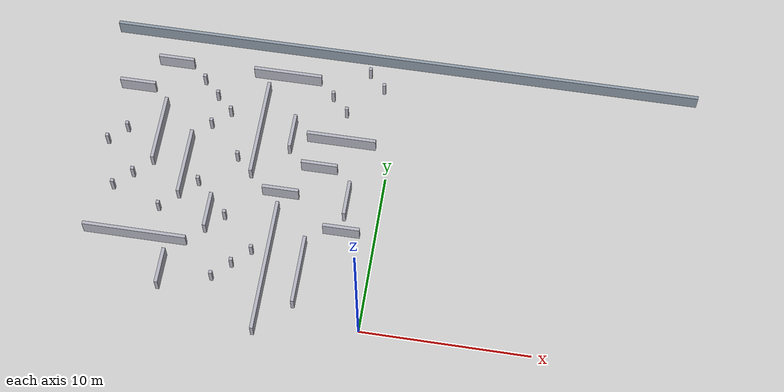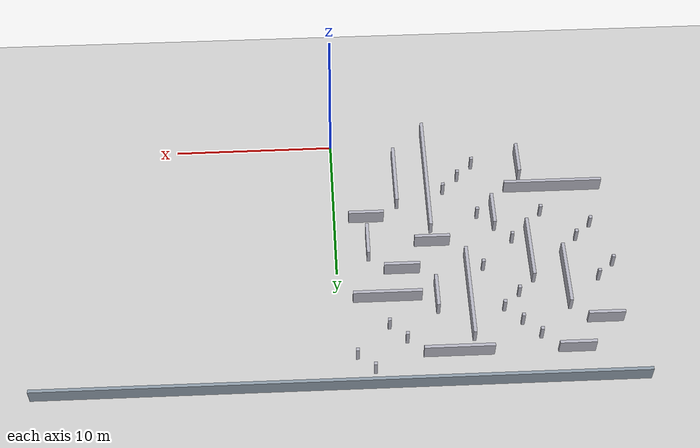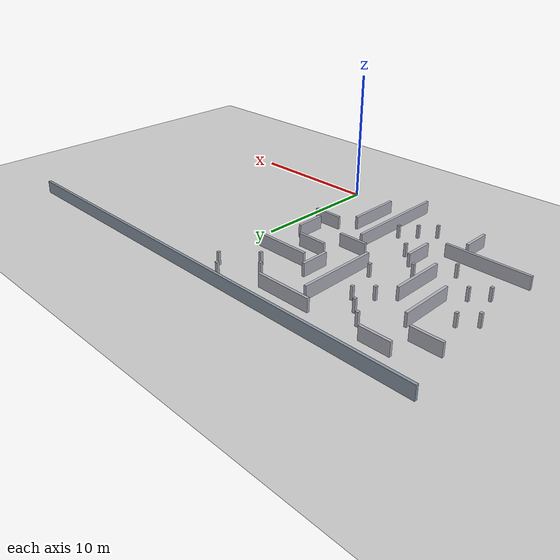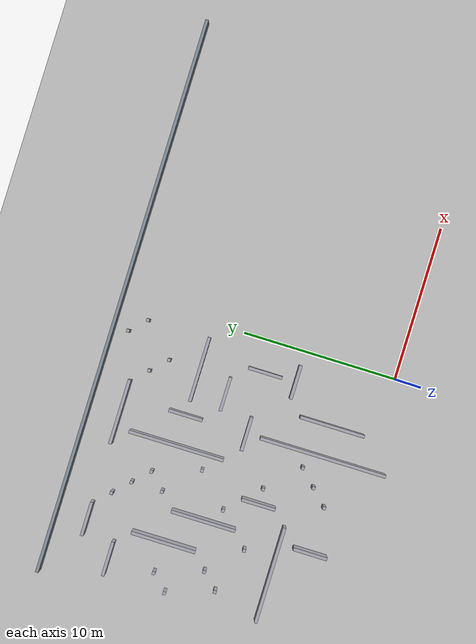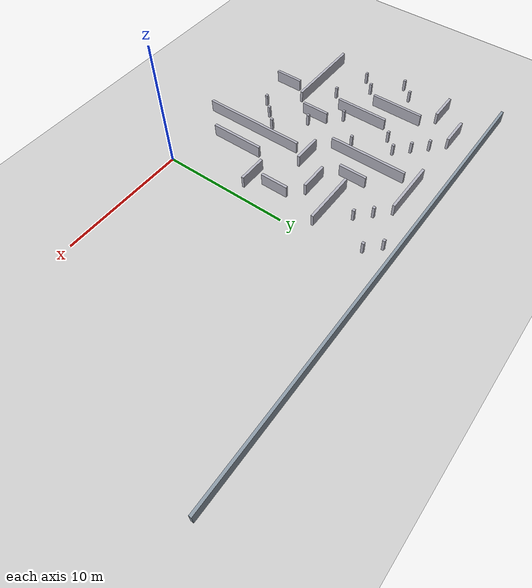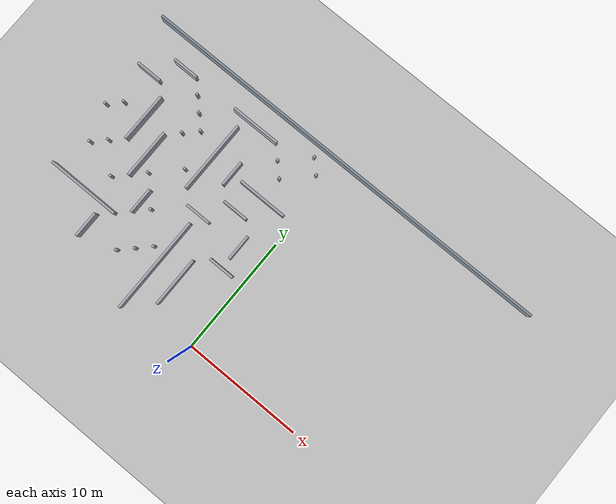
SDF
<sdf version="1.6">
 <world name="maze">
  <include><uri>model://sun</uri></include>
  <include><uri>model://ground_plane</uri></include>
  <model name="shell_n">
   <pose>0.000 18.000 0.500 0 0 0</pose>
   <static>true</static>
   <link name="link">
    <collision name="collision"><geometry><box><size>36.200 0.200 1.000</size></box></geometry></collision>
    <visual name="visual">
     <geometry><box><size>36.200 0.200 1.000</size></box></geometry>
     <material><ambient>0.55 0.6 0.65 1</ambient><diffuse>0.55 0.6 0.65 1</diffuse></material>
    </visual>
   </link>
  </model>
  <model name="mv001">
   <pose>-16.000 7.000 0.500 0 0 0</pose>
   <static>true</static>
   <link name="link">
    <collision name="collision"><geometry><box><size>0.200 0.200 1.000</size></box></geometry></collision>
    <visual name="visual">
     <geometry><box><size>0.200 0.200 1.000</size></box></geometry>
     <material><ambient>0.7 0.7 0.75 1</ambient><diffuse>0.7 0.7 0.75 1</diffuse></material>
    </visual>
   </link>
  </model>
  <model name="mv002">
   <pose>-16.000 11.000 0.500 0 0 0</pose>
   <static>true</static>
   <link name="link">
    <collision name="collision"><geometry><box><size>0.200 0.200 1.000</size></box></geometry></collision>
    <visual name="visual">
     <geometry><box><size>0.200 0.200 1.000</size></box></geometry>
     <material><ambient>0.7 0.7 0.75 1</ambient><diffuse>0.7 0.7 0.75 1</diffuse></material>
    </visual>
   </link>
  </model>
  <model name="mv005">
   <pose>-14.000 11.000 0.500 0 0 0</pose>
   <static>true</static>
   <link name="link">
    <collision name="collision"><geometry><box><size>0.200 4.200 1.000</size></box></geometry></collision>
    <visual name="visual">
     <geometry><box><size>0.200 4.200 1.000</size></box></geometry>
     <material><ambient>0.7 0.7 0.75 1</ambient><diffuse>0.7 0.7 0.75 1</diffuse></material>
    </visual>
   </link>
  </model>
  <model name="mv008">
   <pose>-12.000 2.000 0.500 0 0 0</pose>
   <static>true</static>
   <link name="link">
    <collision name="collision"><geometry><box><size>0.200 2.200 1.000</size></box></geometry></collision>
    <visual name="visual">
     <geometry><box><size>0.200 2.200 1.000</size></box></geometry>
     <material><ambient>0.7 0.7 0.75 1</ambient><diffuse>0.7 0.7 0.75 1</diffuse></material>
    </visual>
   </link>
  </model>
  <model name="mv009">
   <pose>-12.000 9.000 0.500 0 0 0</pose>
   <static>true</static>
   <link name="link">
    <collision name="collision"><geometry><box><size>0.200 4.200 1.000</size></box></geometry></collision>
    <visual name="visual">
     <geometry><box><size>0.200 4.200 1.000</size></box></geometry>
     <material><ambient>0.7 0.7 0.75 1</ambient><diffuse>0.7 0.7 0.75 1</diffuse></material>
    </visual>
   </link>
  </model>
  <model name="mv010">
   <pose>-12.000 15.000 0.500 0 0 0</pose>
   <static>true</static>
   <link name="link">
    <collision name="collision"><geometry><box><size>0.200 0.200 1.000</size></box></geometry></collision>
    <visual name="visual">
     <geometry><box><size>0.200 0.200 1.000</size></box></geometry>
     <material><ambient>0.7 0.7 0.75 1</ambient><diffuse>0.7 0.7 0.75 1</diffuse></material>
    </visual>
   </link>
  </model>
  <model name="mv014">
   <pose>-10.000 6.000 0.500 0 0 0</pose>
   <static>true</static>
   <link name="link">
    <collision name="collision"><geometry><box><size>0.200 2.200 1.000</size></box></geometry></collision>
    <visual name="visual">
     <geometry><box><size>0.200 2.200 1.000</size></box></geometry>
     <material><ambient>0.7 0.7 0.75 1</ambient><diffuse>0.7 0.7 0.75 1</diffuse></material>
    </visual>
   </link>
  </model>
  <model name="mv015">
   <pose>-10.000 13.000 0.500 0 0 0</pose>
   <static>true</static>
   <link name="link">
    <collision name="collision"><geometry><box><size>0.200 0.200 1.000</size></box></geometry></collision>
    <visual name="visual">
     <geometry><box><size>0.200 0.200 1.000</size></box></geometry>
     <material><ambient>0.7 0.7 0.75 1</ambient><diffuse>0.7 0.7 0.75 1</diffuse></material>
    </visual>
   </link>
  </model>
  <model name="mv018">
   <pose>-8.000 3.000 0.500 0 0 0</pose>
   <static>true</static>
   <link name="link">
    <collision name="collision"><geometry><box><size>0.200 0.200 1.000</size></box></geometry></collision>
    <visual name="visual">
     <geometry><box><size>0.200 0.200 1.000</size></box></geometry>
     <material><ambient>0.7 0.7 0.75 1</ambient><diffuse>0.7 0.7 0.75 1</diffuse></material>
    </visual>
   </link>
  </model>
  <model name="mv019">
   <pose>-8.000 12.000 0.500 0 0 0</pose>
   <static>true</static>
   <link name="link">
    <collision name="collision"><geometry><box><size>0.200 6.200 1.000</size></box></geometry></collision>
    <visual name="visual">
     <geometry><box><size>0.200 6.200 1.000</size></box></geometry>
     <material><ambient>0.7 0.7 0.75 1</ambient><diffuse>0.7 0.7 0.75 1</diffuse></material>
    </visual>
   </link>
  </model>
  <model name="mv021">
   <pose>-6.000 3.000 0.500 0 0 0</pose>
   <static>true</static>
   <link name="link">
    <collision name="collision"><geometry><box><size>0.200 8.200 1.000</size></box></geometry></collision>
    <visual name="visual">
     <geometry><box><size>0.200 8.200 1.000</size></box></geometry>
     <material><ambient>0.7 0.7 0.75 1</ambient><diffuse>0.7 0.7 0.75 1</diffuse></material>
    </visual>
   </link>
  </model>
  <model name="mv022">
   <pose>-6.000 12.000 0.500 0 0 0</pose>
   <static>true</static>
   <link name="link">
    <collision name="collision"><geometry><box><size>0.200 2.200 1.000</size></box></geometry></collision>
    <visual name="visual">
     <geometry><box><size>0.200 2.200 1.000</size></box></geometry>
     <material><ambient>0.7 0.7 0.75 1</ambient><diffuse>0.7 0.7 0.75 1</diffuse></material>
    </visual>
   </link>
  </model>
  <model name="mv025">
   <pose>-4.000 3.000 0.500 0 0 0</pose>
   <static>true</static>
   <link name="link">
    <collision name="collision"><geometry><box><size>0.200 4.200 1.000</size></box></geometry></collision>
    <visual name="visual">
     <geometry><box><size>0.200 4.200 1.000</size></box></geometry>
     <material><ambient>0.7 0.7 0.75 1</ambient><diffuse>0.7 0.7 0.75 1</diffuse></material>
    </visual>
   </link>
  </model>
  <model name="mv026">
   <pose>-4.000 15.000 0.500 0 0 0</pose>
   <static>true</static>
   <link name="link">
    <collision name="collision"><geometry><box><size>0.200 0.200 1.000</size></box></geometry></collision>
    <visual name="visual">
     <geometry><box><size>0.200 0.200 1.000</size></box></geometry>
     <material><ambient>0.7 0.7 0.75 1</ambient><diffuse>0.7 0.7 0.75 1</diffuse></material>
    </visual>
   </link>
  </model>
  <model name="mv029">
   <pose>-2.000 8.000 0.500 0 0 0</pose>
   <static>true</static>
   <link name="link">
    <collision name="collision"><geometry><box><size>0.200 2.200 1.000</size></box></geometry></collision>
    <visual name="visual">
     <geometry><box><size>0.200 2.200 1.000</size></box></geometry>
     <material><ambient>0.7 0.7 0.75 1</ambient><diffuse>0.7 0.7 0.75 1</diffuse></material>
    </visual>
   </link>
  </model>
  <model name="mv030">
   <pose>-2.000 17.000 0.500 0 0 0</pose>
   <static>true</static>
   <link name="link">
    <collision name="collision"><geometry><box><size>0.200 0.200 1.000</size></box></geometry></collision>
    <visual name="visual">
     <geometry><box><size>0.200 0.200 1.000</size></box></geometry>
     <material><ambient>0.7 0.7 0.75 1</ambient><diffuse>0.7 0.7 0.75 1</diffuse></material>
    </visual>
   </link>
  </model>
  <model name="mh037">
   <pose>-9.000 2.000 0.500 0 0 0</pose>
   <static>true</static>
   <link name="link">
    <collision name="collision"><geometry><box><size>0.200 0.200 1.000</size></box></geometry></collision>
    <visual name="visual">
     <geometry><box><size>0.200 0.200 1.000</size></box></geometry>
     <material><ambient>0.7 0.7 0.75 1</ambient><diffuse>0.7 0.7 0.75 1</diffuse></material>
    </visual>
   </link>
  </model>
  <model name="mh040">
   <pose>-14.000 4.000 0.500 0 0 0</pose>
   <static>true</static>
   <link name="link">
    <collision name="collision"><geometry><box><size>6.200 0.200 1.000</size></box></geometry></collision>
    <visual name="visual">
     <geometry><box><size>6.200 0.200 1.000</size></box></geometry>
     <material><ambient>0.7 0.7 0.75 1</ambient><diffuse>0.7 0.7 0.75 1</diffuse></material>
    </visual>
   </link>
  </model>
  <model name="mh041">
   <pose>-7.000 4.000 0.500 0 0 0</pose>
   <static>true</static>
   <link name="link">
    <collision name="collision"><geometry><box><size>0.200 0.200 1.000</size></box></geometry></collision>
    <visual name="visual">
     <geometry><box><size>0.200 0.200 1.000</size></box></geometry>
     <material><ambient>0.7 0.7 0.75 1</ambient><diffuse>0.7 0.7 0.75 1</diffuse></material>
    </visual>
   </link>
  </model>
  <model name="mh044">
   <pose>-13.000 6.000 0.500 0 0 0</pose>
   <static>true</static>
   <link name="link">
    <collision name="collision"><geometry><box><size>0.200 0.200 1.000</size></box></geometry></collision>
    <visual name="visual">
     <geometry><box><size>0.200 0.200 1.000</size></box></geometry>
     <material><ambient>0.7 0.7 0.75 1</ambient><diffuse>0.7 0.7 0.75 1</diffuse></material>
    </visual>
   </link>
  </model>
  <model name="mh045">
   <pose>-9.000 6.000 0.500 0 0 0</pose>
   <static>true</static>
   <link name="link">
    <collision name="collision"><geometry><box><size>0.200 0.200 1.000</size></box></geometry></collision>
    <visual name="visual">
     <geometry><box><size>0.200 0.200 1.000</size></box></geometry>
     <material><ambient>0.7 0.7 0.75 1</ambient><diffuse>0.7 0.7 0.75 1</diffuse></material>
    </visual>
   </link>
  </model>
  <model name="mh046">
   <pose>-2.000 6.000 0.500 0 0 0</pose>
   <static>true</static>
   <link name="link">
    <collision name="collision"><geometry><box><size>2.200 0.200 1.000</size></box></geometry></collision>
    <visual name="visual">
     <geometry><box><size>2.200 0.200 1.000</size></box></geometry>
     <material><ambient>0.7 0.7 0.75 1</ambient><diffuse>0.7 0.7 0.75 1</diffuse></material>
    </visual>
   </link>
  </model>
  <model name="mh049">
   <pose>-15.000 8.000 0.500 0 0 0</pose>
   <static>true</static>
   <link name="link">
    <collision name="collision"><geometry><box><size>0.200 0.200 1.000</size></box></geometry></collision>
    <visual name="visual">
     <geometry><box><size>0.200 0.200 1.000</size></box></geometry>
     <material><ambient>0.7 0.7 0.75 1</ambient><diffuse>0.7 0.7 0.75 1</diffuse></material>
    </visual>
   </link>
  </model>
  <model name="mh050">
   <pose>-11.000 8.000 0.500 0 0 0</pose>
   <static>true</static>
   <link name="link">
    <collision name="collision"><geometry><box><size>0.200 0.200 1.000</size></box></geometry></collision>
    <visual name="visual">
     <geometry><box><size>0.200 0.200 1.000</size></box></geometry>
     <material><ambient>0.7 0.7 0.75 1</ambient><diffuse>0.7 0.7 0.75 1</diffuse></material>
    </visual>
   </link>
  </model>
  <model name="mh051">
   <pose>-6.000 8.000 0.500 0 0 0</pose>
   <static>true</static>
   <link name="link">
    <collision name="collision"><geometry><box><size>2.200 0.200 1.000</size></box></geometry></collision>
    <visual name="visual">
     <geometry><box><size>2.200 0.200 1.000</size></box></geometry>
     <material><ambient>0.7 0.7 0.75 1</ambient><diffuse>0.7 0.7 0.75 1</diffuse></material>
    </visual>
   </link>
  </model>
  <model name="mh054">
   <pose>-17.000 10.000 0.500 0 0 0</pose>
   <static>true</static>
   <link name="link">
    <collision name="collision"><geometry><box><size>0.200 0.200 1.000</size></box></geometry></collision>
    <visual name="visual">
     <geometry><box><size>0.200 0.200 1.000</size></box></geometry>
     <material><ambient>0.7 0.7 0.75 1</ambient><diffuse>0.7 0.7 0.75 1</diffuse></material>
    </visual>
   </link>
  </model>
  <model name="mh055">
   <pose>-9.000 10.000 0.500 0 0 0</pose>
   <static>true</static>
   <link name="link">
    <collision name="collision"><geometry><box><size>0.200 0.200 1.000</size></box></geometry></collision>
    <visual name="visual">
     <geometry><box><size>0.200 0.200 1.000</size></box></geometry>
     <material><ambient>0.7 0.7 0.75 1</ambient><diffuse>0.7 0.7 0.75 1</diffuse></material>
    </visual>
   </link>
  </model>
  <model name="mh056">
   <pose>-4.000 10.000 0.500 0 0 0</pose>
   <static>true</static>
   <link name="link">
    <collision name="collision"><geometry><box><size>2.200 0.200 1.000</size></box></geometry></collision>
    <visual name="visual">
     <geometry><box><size>2.200 0.200 1.000</size></box></geometry>
     <material><ambient>0.7 0.7 0.75 1</ambient><diffuse>0.7 0.7 0.75 1</diffuse></material>
    </visual>
   </link>
  </model>
  <model name="mh060">
   <pose>-11.000 12.000 0.500 0 0 0</pose>
   <static>true</static>
   <link name="link">
    <collision name="collision"><geometry><box><size>0.200 0.200 1.000</size></box></geometry></collision>
    <visual name="visual">
     <geometry><box><size>0.200 0.200 1.000</size></box></geometry>
     <material><ambient>0.7 0.7 0.75 1</ambient><diffuse>0.7 0.7 0.75 1</diffuse></material>
    </visual>
   </link>
  </model>
  <model name="mh061">
   <pose>-3.000 12.000 0.500 0 0 0</pose>
   <static>true</static>
   <link name="link">
    <collision name="collision"><geometry><box><size>4.200 0.200 1.000</size></box></geometry></collision>
    <visual name="visual">
     <geometry><box><size>4.200 0.200 1.000</size></box></geometry>
     <material><ambient>0.7 0.7 0.75 1</ambient><diffuse>0.7 0.7 0.75 1</diffuse></material>
    </visual>
   </link>
  </model>
  <model name="mh064">
   <pose>-16.000 14.000 0.500 0 0 0</pose>
   <static>true</static>
   <link name="link">
    <collision name="collision"><geometry><box><size>2.200 0.200 1.000</size></box></geometry></collision>
    <visual name="visual">
     <geometry><box><size>2.200 0.200 1.000</size></box></geometry>
     <material><ambient>0.7 0.7 0.75 1</ambient><diffuse>0.7 0.7 0.75 1</diffuse></material>
    </visual>
   </link>
  </model>
  <model name="mh065">
   <pose>-11.000 14.000 0.500 0 0 0</pose>
   <static>true</static>
   <link name="link">
    <collision name="collision"><geometry><box><size>0.200 0.200 1.000</size></box></geometry></collision>
    <visual name="visual">
     <geometry><box><size>0.200 0.200 1.000</size></box></geometry>
     <material><ambient>0.7 0.7 0.75 1</ambient><diffuse>0.7 0.7 0.75 1</diffuse></material>
    </visual>
   </link>
  </model>
  <model name="mh066">
   <pose>-3.000 14.000 0.500 0 0 0</pose>
   <static>true</static>
   <link name="link">
    <collision name="collision"><geometry><box><size>0.200 0.200 1.000</size></box></geometry></collision>
    <visual name="visual">
     <geometry><box><size>0.200 0.200 1.000</size></box></geometry>
     <material><ambient>0.7 0.7 0.75 1</ambient><diffuse>0.7 0.7 0.75 1</diffuse></material>
    </visual>
   </link>
  </model>
  <model name="mh068">
   <pose>-14.000 16.000 0.500 0 0 0</pose>
   <static>true</static>
   <link name="link">
    <collision name="collision"><geometry><box><size>2.200 0.200 1.000</size></box></geometry></collision>
    <visual name="visual">
     <geometry><box><size>2.200 0.200 1.000</size></box></geometry>
     <material><ambient>0.7 0.7 0.75 1</ambient><diffuse>0.7 0.7 0.75 1</diffuse></material>
    </visual>
   </link>
  </model>
  <model name="mh069">
   <pose>-7.000 16.000 0.500 0 0 0</pose>
   <static>true</static>
   <link name="link">
    <collision name="collision"><geometry><box><size>4.200 0.200 1.000</size></box></geometry></collision>
    <visual name="visual">
     <geometry><box><size>4.200 0.200 1.000</size></box></geometry>
     <material><ambient>0.7 0.7 0.75 1</ambient><diffuse>0.7 0.7 0.75 1</diffuse></material>
    </visual>
   </link>
  </model>
  <model name="mh070">
   <pose>-1.000 16.000 0.500 0 0 0</pose>
   <static>true</static>
   <link name="link">
    <collision name="collision"><geometry><box><size>0.200 0.200 1.000</size></box></geometry></collision>
    <visual name="visual">
     <geometry><box><size>0.200 0.200 1.000</size></box></geometry>
     <material><ambient>0.7 0.7 0.75 1</ambient><diffuse>0.7 0.7 0.75 1</diffuse></material>
    </visual>
   </link>
  </model>
 </world>
</sdf>
